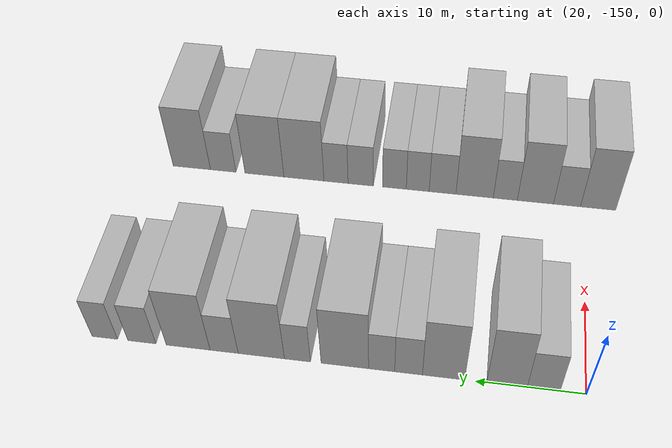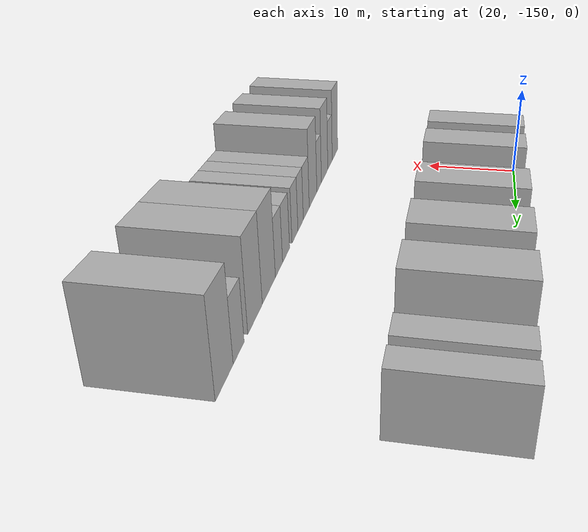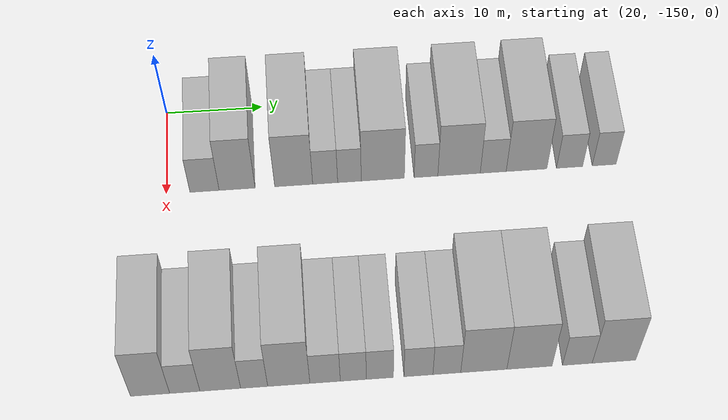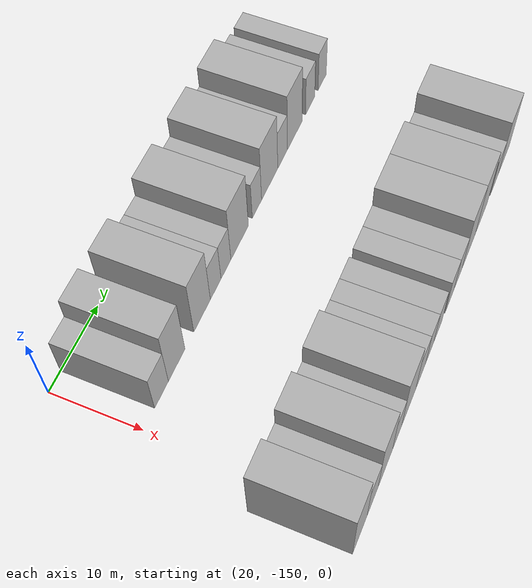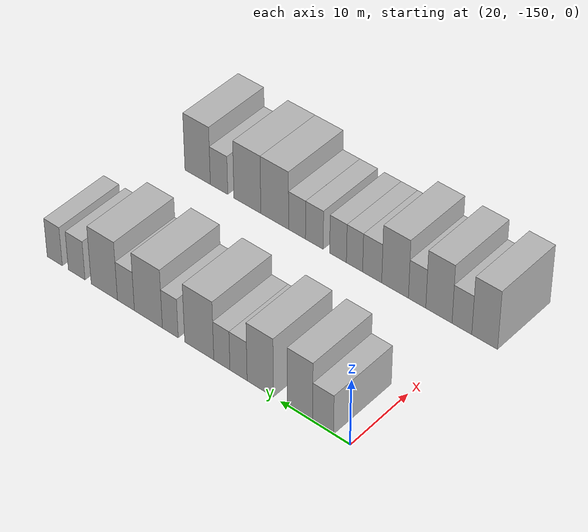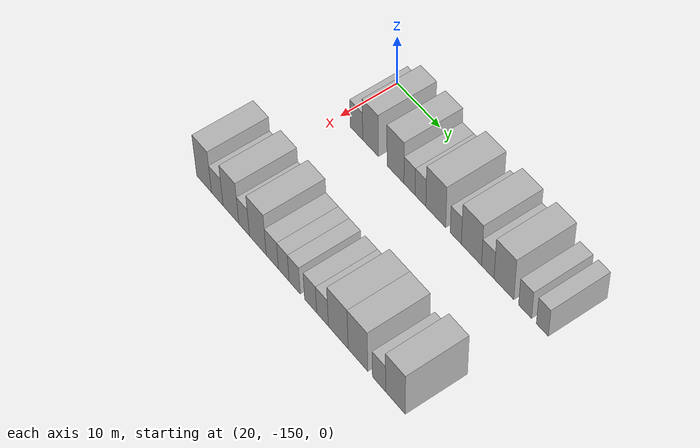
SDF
<sdf version="1.6">
 <world name="default">
  <model name="building_13">
   <static>1</static>
   <pose>25.0000 -146.1533 0 0.000000 0.000000 0.000000</pose>
   <link name="link">
    <pose>0 0 3.00 0 0 0</pose>
    <collision name="collision"><geometry><box><size>10.0000 2.9655 6.0000</size></box></geometry></collision>
    <visual name="visual">
     <cast_shadows>0</cast_shadows>
     <geometry><box><size>10.0000 2.9655 6.0000</size></box></geometry>
     <material>
      <script>
       <uri>model://HANNAS_wall/materials/scripts</uri>
       <uri>model://HANNAS_wall/materials/textures</uri>
       <name>vrc/HANNAS_wall</name>
      </script>
     </material>
    </visual>
   </link>
  </model>
  <model name="building_14">
   <static>1</static>
   <pose>25.0000 -142.8404 0 0.000000 0.000000 0.000000</pose>
   <link name="link">
    <pose>0 0 4.50 0 0 0</pose>
    <collision name="collision"><geometry><box><size>10.0000 3.6602 9.0000</size></box></geometry></collision>
    <visual name="visual">
     <cast_shadows>0</cast_shadows>
     <geometry><box><size>10.0000 3.6602 9.0000</size></box></geometry>
     <material>
      <script>
       <uri>model://HANNAS_wall/materials/scripts</uri>
       <uri>model://HANNAS_wall/materials/textures</uri>
       <name>vrc/HANNAS_wall</name>
      </script>
     </material>
    </visual>
   </link>
  </model>
  <model name="building_15">
   <static>1</static>
   <pose>25.0000 -137.0735 0 0.000000 0.000000 0.000000</pose>
   <link name="link">
    <pose>0 0 4.50 0 0 0</pose>
    <collision name="collision"><geometry><box><size>10.0000 3.8736 9.0000</size></box></geometry></collision>
    <visual name="visual">
     <cast_shadows>0</cast_shadows>
     <geometry><box><size>10.0000 3.8736 9.0000</size></box></geometry>
     <material>
      <script>
       <uri>model://HANNAS_wall/materials/scripts</uri>
       <uri>model://HANNAS_wall/materials/textures</uri>
       <name>vrc/HANNAS_wall</name>
      </script>
     </material>
    </visual>
   </link>
  </model>
  <model name="building_16">
   <static>1</static>
   <pose>25.0000 -133.8605 0 0.000000 0.000000 0.000000</pose>
   <link name="link">
    <pose>0 0 3.00 0 0 0</pose>
    <collision name="collision"><geometry><box><size>10.0000 2.5524 6.0000</size></box></geometry></collision>
    <visual name="visual">
     <cast_shadows>0</cast_shadows>
     <geometry><box><size>10.0000 2.5524 6.0000</size></box></geometry>
     <material>
      <script>
       <uri>model://HANNAS_wall/materials/scripts</uri>
       <uri>model://HANNAS_wall/materials/textures</uri>
       <name>vrc/HANNAS_wall</name>
      </script>
     </material>
    </visual>
   </link>
  </model>
  <model name="building_17">
   <static>1</static>
   <pose>25.0000 -131.3739 0 0.000000 0.000000 0.000000</pose>
   <link name="link">
    <pose>0 0 3.00 0 0 0</pose>
    <collision name="collision"><geometry><box><size>10.0000 2.4209 6.0000</size></box></geometry></collision>
    <visual name="visual">
     <cast_shadows>0</cast_shadows>
     <geometry><box><size>10.0000 2.4209 6.0000</size></box></geometry>
     <material>
      <script>
       <uri>model://HANNAS_wall/materials/scripts</uri>
       <uri>model://HANNAS_wall/materials/textures</uri>
       <name>vrc/HANNAS_wall</name>
      </script>
     </material>
    </visual>
   </link>
  </model>
  <model name="building_18">
   <static>1</static>
   <pose>25.0000 -127.9563 0 0.000000 0.000000 0.000000</pose>
   <link name="link">
    <pose>0 0 4.50 0 0 0</pose>
    <collision name="collision"><geometry><box><size>10.0000 4.4143 9.0000</size></box></geometry></collision>
    <visual name="visual">
     <cast_shadows>0</cast_shadows>
     <geometry><box><size>10.0000 4.4143 9.0000</size></box></geometry>
     <material>
      <script>
       <uri>model://HANNAS_wall/materials/scripts</uri>
       <uri>model://HANNAS_wall/materials/textures</uri>
       <name>vrc/HANNAS_wall</name>
      </script>
     </material>
    </visual>
   </link>
  </model>
  <model name="building_19">
   <static>1</static>
   <pose>25.0000 -123.5291 0 0.000000 0.000000 0.000000</pose>
   <link name="link">
    <pose>0 0 3.00 0 0 0</pose>
    <collision name="collision"><geometry><box><size>10.0000 2.4401 6.0000</size></box></geometry></collision>
    <visual name="visual">
     <cast_shadows>0</cast_shadows>
     <geometry><box><size>10.0000 2.4401 6.0000</size></box></geometry>
     <material>
      <script>
       <uri>model://HANNAS_wall/materials/scripts</uri>
       <uri>model://HANNAS_wall/materials/textures</uri>
       <name>vrc/HANNAS_wall</name>
      </script>
     </material>
    </visual>
   </link>
  </model>
  <model name="building_20">
   <static>1</static>
   <pose>25.0000 -120.1236 0 0.000000 0.000000 0.000000</pose>
   <link name="link">
    <pose>0 0 4.50 0 0 0</pose>
    <collision name="collision"><geometry><box><size>10.0000 4.3709 9.0000</size></box></geometry></collision>
    <visual name="visual">
     <cast_shadows>0</cast_shadows>
     <geometry><box><size>10.0000 4.3709 9.0000</size></box></geometry>
     <material>
      <script>
       <uri>model://HANNAS_wall/materials/scripts</uri>
       <uri>model://HANNAS_wall/materials/textures</uri>
       <name>vrc/HANNAS_wall</name>
      </script>
     </material>
    </visual>
   </link>
  </model>
  <model name="building_21">
   <static>1</static>
   <pose>25.0000 -116.5990 0 0.000000 0.000000 0.000000</pose>
   <link name="link">
    <pose>0 0 3.00 0 0 0</pose>
    <collision name="collision"><geometry><box><size>10.0000 2.6783 6.0000</size></box></geometry></collision>
    <visual name="visual">
     <cast_shadows>0</cast_shadows>
     <geometry><box><size>10.0000 2.6783 6.0000</size></box></geometry>
     <material>
      <script>
       <uri>model://HANNAS_wall/materials/scripts</uri>
       <uri>model://HANNAS_wall/materials/textures</uri>
       <name>vrc/HANNAS_wall</name>
      </script>
     </material>
    </visual>
   </link>
  </model>
  <model name="building_22">
   <static>1</static>
   <pose>25.0000 -113.1571 0 0.000000 0.000000 0.000000</pose>
   <link name="link">
    <pose>0 0 4.50 0 0 0</pose>
    <collision name="collision"><geometry><box><size>10.0000 4.2056 9.0000</size></box></geometry></collision>
    <visual name="visual">
     <cast_shadows>0</cast_shadows>
     <geometry><box><size>10.0000 4.2056 9.0000</size></box></geometry>
     <material>
      <script>
       <uri>model://HANNAS_wall/materials/scripts</uri>
       <uri>model://HANNAS_wall/materials/textures</uri>
       <name>vrc/HANNAS_wall</name>
      </script>
     </material>
    </visual>
   </link>
  </model>
  <model name="building_23">
   <static>1</static>
   <pose>25.0000 -108.7004 0 0.000000 0.000000 0.000000</pose>
   <link name="link">
    <pose>0 0 3.00 0 0 0</pose>
    <collision name="collision"><geometry><box><size>10.0000 2.7079 6.0000</size></box></geometry></collision>
    <visual name="visual">
     <cast_shadows>0</cast_shadows>
     <geometry><box><size>10.0000 2.7079 6.0000</size></box></geometry>
     <material>
      <script>
       <uri>model://HANNAS_wall/materials/scripts</uri>
       <uri>model://HANNAS_wall/materials/textures</uri>
       <name>vrc/HANNAS_wall</name>
      </script>
     </material>
    </visual>
   </link>
  </model>
  <model name="building_24">
   <static>1</static>
   <pose>25.0000 -105.1096 0 0.000000 0.000000 0.000000</pose>
   <link name="link">
    <pose>0 0 3.00 0 0 0</pose>
    <collision name="collision"><geometry><box><size>10.0000 2.4737 6.0000</size></box></geometry></collision>
    <visual name="visual">
     <cast_shadows>0</cast_shadows>
     <geometry><box><size>10.0000 2.4737 6.0000</size></box></geometry>
     <material>
      <script>
       <uri>model://HANNAS_wall/materials/scripts</uri>
       <uri>model://HANNAS_wall/materials/textures</uri>
       <name>vrc/HANNAS_wall</name>
      </script>
     </material>
    </visual>
   </link>
  </model>
  <model name="building_118">
   <static>1</static>
   <pose>47.0000 -151.5051 0 0.000000 0.000000 0.000000</pose>
   <link name="link">
    <pose>0 0 4.50 0 0 0</pose>
    <collision name="collision"><geometry><box><size>10.0000 3.6558 9.0000</size></box></geometry></collision>
    <visual name="visual">
     <cast_shadows>0</cast_shadows>
     <geometry><box><size>10.0000 3.6558 9.0000</size></box></geometry>
     <material>
      <script>
       <uri>model://HANNAS_wall/materials/scripts</uri>
       <uri>model://HANNAS_wall/materials/textures</uri>
       <name>vrc/HANNAS_wall</name>
      </script>
     </material>
    </visual>
   </link>
  </model>
  <model name="building_119">
   <static>1</static>
   <pose>47.0000 -148.2666 0 0.000000 0.000000 0.000000</pose>
   <link name="link">
    <pose>0 0 3.00 0 0 0</pose>
    <collision name="collision"><geometry><box><size>10.0000 2.8212 6.0000</size></box></geometry></collision>
    <visual name="visual">
     <cast_shadows>0</cast_shadows>
     <geometry><box><size>10.0000 2.8212 6.0000</size></box></geometry>
     <material>
      <script>
       <uri>model://HANNAS_wall/materials/scripts</uri>
       <uri>model://HANNAS_wall/materials/textures</uri>
       <name>vrc/HANNAS_wall</name>
      </script>
     </material>
    </visual>
   </link>
  </model>
  <model name="building_120">
   <static>1</static>
   <pose>47.0000 -144.9527 0 0.000000 0.000000 0.000000</pose>
   <link name="link">
    <pose>0 0 4.50 0 0 0</pose>
    <collision name="collision"><geometry><box><size>10.0000 3.8066 9.0000</size></box></geometry></collision>
    <visual name="visual">
     <cast_shadows>0</cast_shadows>
     <geometry><box><size>10.0000 3.8066 9.0000</size></box></geometry>
     <material>
      <script>
       <uri>model://HANNAS_wall/materials/scripts</uri>
       <uri>model://HANNAS_wall/materials/textures</uri>
       <name>vrc/HANNAS_wall</name>
      </script>
     </material>
    </visual>
   </link>
  </model>
  <model name="building_121">
   <static>1</static>
   <pose>47.0000 -141.7789 0 0.000000 0.000000 0.000000</pose>
   <link name="link">
    <pose>0 0 3.00 0 0 0</pose>
    <collision name="collision"><geometry><box><size>10.0000 2.5410 6.0000</size></box></geometry></collision>
    <visual name="visual">
     <cast_shadows>0</cast_shadows>
     <geometry><box><size>10.0000 2.5410 6.0000</size></box></geometry>
     <material>
      <script>
       <uri>model://HANNAS_wall/materials/scripts</uri>
       <uri>model://HANNAS_wall/materials/textures</uri>
       <name>vrc/HANNAS_wall</name>
      </script>
     </material>
    </visual>
   </link>
  </model>
  <model name="building_122">
   <static>1</static>
   <pose>47.0000 -138.5281 0 0.000000 0.000000 0.000000</pose>
   <link name="link">
    <pose>0 0 4.50 0 0 0</pose>
    <collision name="collision"><geometry><box><size>10.0000 3.9607 9.0000</size></box></geometry></collision>
    <visual name="visual">
     <cast_shadows>0</cast_shadows>
     <geometry><box><size>10.0000 3.9607 9.0000</size></box></geometry>
     <material>
      <script>
       <uri>model://HANNAS_wall/materials/scripts</uri>
       <uri>model://HANNAS_wall/materials/textures</uri>
       <name>vrc/HANNAS_wall</name>
      </script>
     </material>
    </visual>
   </link>
  </model>
  <model name="building_123">
   <static>1</static>
   <pose>47.0000 -135.1188 0 0.000000 0.000000 0.000000</pose>
   <link name="link">
    <pose>0 0 3.00 0 0 0</pose>
    <collision name="collision"><geometry><box><size>10.0000 2.8579 6.0000</size></box></geometry></collision>
    <visual name="visual">
     <cast_shadows>0</cast_shadows>
     <geometry><box><size>10.0000 2.8579 6.0000</size></box></geometry>
     <material>
      <script>
       <uri>model://HANNAS_wall/materials/scripts</uri>
       <uri>model://HANNAS_wall/materials/textures</uri>
       <name>vrc/HANNAS_wall</name>
      </script>
     </material>
    </visual>
   </link>
  </model>
  <model name="building_124">
   <static>1</static>
   <pose>47.0000 -132.4629 0 0.000000 0.000000 0.000000</pose>
   <link name="link">
    <pose>0 0 3.00 0 0 0</pose>
    <collision name="collision"><geometry><box><size>10.0000 2.4540 6.0000</size></box></geometry></collision>
    <visual name="visual">
     <cast_shadows>0</cast_shadows>
     <geometry><box><size>10.0000 2.4540 6.0000</size></box></geometry>
     <material>
      <script>
       <uri>model://HANNAS_wall/materials/scripts</uri>
       <uri>model://HANNAS_wall/materials/textures</uri>
       <name>vrc/HANNAS_wall</name>
      </script>
     </material>
    </visual>
   </link>
  </model>
  <model name="building_125">
   <static>1</static>
   <pose>47.0000 -129.9616 0 0.000000 0.000000 0.000000</pose>
   <link name="link">
    <pose>0 0 3.00 0 0 0</pose>
    <collision name="collision"><geometry><box><size>10.0000 2.5486 6.0000</size></box></geometry></collision>
    <visual name="visual">
     <cast_shadows>0</cast_shadows>
     <geometry><box><size>10.0000 2.5486 6.0000</size></box></geometry>
     <material>
      <script>
       <uri>model://HANNAS_wall/materials/scripts</uri>
       <uri>model://HANNAS_wall/materials/textures</uri>
       <name>vrc/HANNAS_wall</name>
      </script>
     </material>
    </visual>
   </link>
  </model>
  <model name="building_126">
   <static>1</static>
   <pose>47.0000 -126.3181 0 0.000000 0.000000 0.000000</pose>
   <link name="link">
    <pose>0 0 3.00 0 0 0</pose>
    <collision name="collision"><geometry><box><size>10.0000 2.7384 6.0000</size></box></geometry></collision>
    <visual name="visual">
     <cast_shadows>0</cast_shadows>
     <geometry><box><size>10.0000 2.7384 6.0000</size></box></geometry>
     <material>
      <script>
       <uri>model://HANNAS_wall/materials/scripts</uri>
       <uri>model://HANNAS_wall/materials/textures</uri>
       <name>vrc/HANNAS_wall</name>
      </script>
     </material>
    </visual>
   </link>
  </model>
  <model name="building_127">
   <static>1</static>
   <pose>47.0000 -123.6319 0 0.000000 0.000000 0.000000</pose>
   <link name="link">
    <pose>0 0 3.00 0 0 0</pose>
    <collision name="collision"><geometry><box><size>10.0000 2.6339 6.0000</size></box></geometry></collision>
    <visual name="visual">
     <cast_shadows>0</cast_shadows>
     <geometry><box><size>10.0000 2.6339 6.0000</size></box></geometry>
     <material>
      <script>
       <uri>model://HANNAS_wall/materials/scripts</uri>
       <uri>model://HANNAS_wall/materials/textures</uri>
       <name>vrc/HANNAS_wall</name>
      </script>
     </material>
    </visual>
   </link>
  </model>
  <model name="building_128">
   <static>1</static>
   <pose>47.0000 -120.1236 0 0.000000 0.000000 0.000000</pose>
   <link name="link">
    <pose>0 0 4.50 0 0 0</pose>
    <collision name="collision"><geometry><box><size>10.0000 4.3827 9.0000</size></box></geometry></collision>
    <visual name="visual">
     <cast_shadows>0</cast_shadows>
     <geometry><box><size>10.0000 4.3827 9.0000</size></box></geometry>
     <material>
      <script>
       <uri>model://HANNAS_wall/materials/scripts</uri>
       <uri>model://HANNAS_wall/materials/textures</uri>
       <name>vrc/HANNAS_wall</name>
      </script>
     </material>
    </visual>
   </link>
  </model>
  <model name="building_129">
   <static>1</static>
   <pose>47.0000 -115.7824 0 0.000000 0.000000 0.000000</pose>
   <link name="link">
    <pose>0 0 4.50 0 0 0</pose>
    <collision name="collision"><geometry><box><size>10.0000 4.2997 9.0000</size></box></geometry></collision>
    <visual name="visual">
     <cast_shadows>0</cast_shadows>
     <geometry><box><size>10.0000 4.2997 9.0000</size></box></geometry>
     <material>
      <script>
       <uri>model://HANNAS_wall/materials/scripts</uri>
       <uri>model://HANNAS_wall/materials/textures</uri>
       <name>vrc/HANNAS_wall</name>
      </script>
     </material>
    </visual>
   </link>
  </model>
  <model name="building_130">
   <static>1</static>
   <pose>47.0000 -111.2166 0 0.000000 0.000000 0.000000</pose>
   <link name="link">
    <pose>0 0 3.00 0 0 0</pose>
    <collision name="collision"><geometry><box><size>10.0000 2.8319 6.0000</size></box></geometry></collision>
    <visual name="visual">
     <cast_shadows>0</cast_shadows>
     <geometry><box><size>10.0000 2.8319 6.0000</size></box></geometry>
     <material>
      <script>
       <uri>model://HANNAS_wall/materials/scripts</uri>
       <uri>model://HANNAS_wall/materials/textures</uri>
       <name>vrc/HANNAS_wall</name>
      </script>
     </material>
    </visual>
   </link>
  </model>
  <model name="building_131">
   <static>1</static>
   <pose>47.0000 -107.7161 0 0.000000 0.000000 0.000000</pose>
   <link name="link">
    <pose>0 0 4.50 0 0 0</pose>
    <collision name="collision"><geometry><box><size>10.0000 4.1691 9.0000</size></box></geometry></collision>
    <visual name="visual">
     <cast_shadows>0</cast_shadows>
     <geometry><box><size>10.0000 4.1691 9.0000</size></box></geometry>
     <material>
      <script>
       <uri>model://HANNAS_wall/materials/scripts</uri>
       <uri>model://HANNAS_wall/materials/textures</uri>
       <name>vrc/HANNAS_wall</name>
      </script>
     </material>
    </visual>
   </link>
  </model>
 </world>
</sdf>
